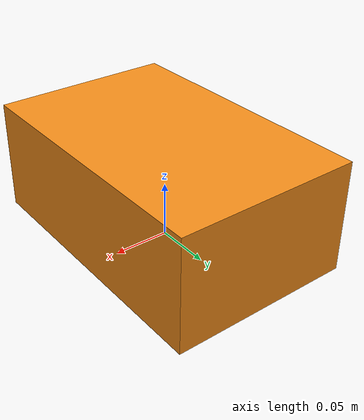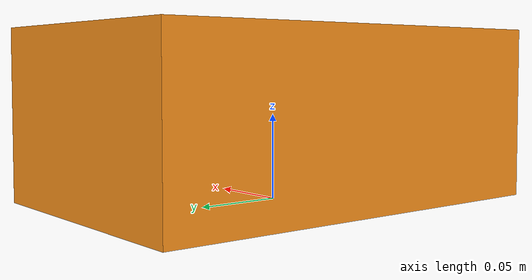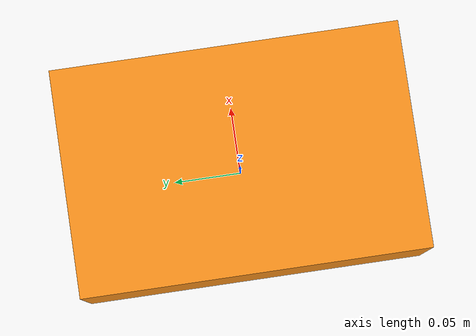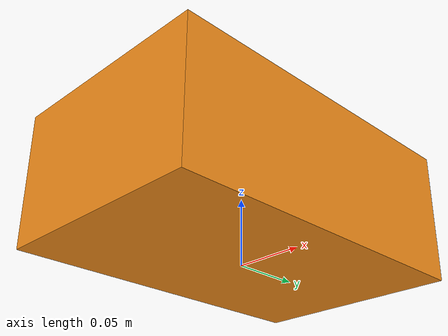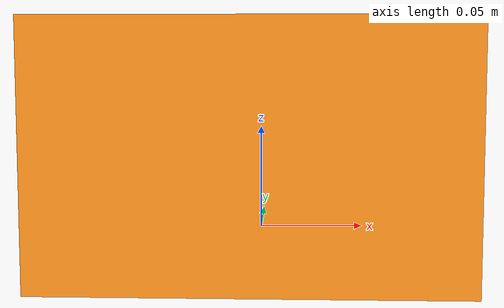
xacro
<?xml version="1.0"?>
<!-- Revolute-Revolute Manipulator -->
<robot name="rrbot" xmlns:xacro="http://www.ros.org/wiki/xacro">

  <!-- Constants for robot dimensions -->

  <xacro:property name="wheel_radius" value="0.04" />
  <xacro:property name="wheel_height" value="0.02" />
  <xacro:property name="wheel_mass" value="2.5" /> <!-- in kg-->

  <xacro:property name="PI" value="3.1415926535897931"/>
  <xacro:property name="mass" value="1" /> <!-- arbitrary value for mass -->
  <xacro:property name="width" value="0.163" /> <!-- Square dimensions (widthxwidth) of beams -->
  <xacro:property name="length1" value="0.25" />
  <xacro:property name="height1" value="0.1" /> <!-- Link 1 -->
  <xacro:property name="height2" value="1" /> <!-- Link 2 -->
  <xacro:property name="height3" value="1" /> <!-- Link 3 -->
  <xacro:property name="camera_link" value="0.05" /> <!-- Size of square 'camera' box -->
  <xacro:property name="axel_offset" value="0.05" /> <!-- Space btw top of beam and the each joint -->

  <!-- Import all Gazebo-customization elements, including Gazebo colors -->
  <xacro:include filename="$(find rrbot_description)/urdf/rrbot.gazebo" />
  <!-- Import Rviz colors -->
  <xacro:include filename="$(find rrbot_description)/urdf/materials.xacro" />

  <!-- Used for fixing robot to Gazebo 'base_link' -->
  <link name="world"/>

  <joint name="fixed" type="fixed">
    <parent link="world"/>
    <child link="link1"/>
  </joint>

  <!-- Base Link -->
  <link name="link1">
    <collision>
      <origin xyz="0 0 ${height1/2}" rpy="0 0 0"/>
      <geometry>
	<box size="${width} ${length1} ${height1}"/>
      </geometry>
    </collision>

    <visual>
      <origin xyz="0 0 ${height1/2}" rpy="0 0 0"/>
      <geometry>
	<box size="${width} ${length1} ${height1}"/>
      </geometry>
      <material name="orange"/>
    </visual>

  </link>

</robot>
